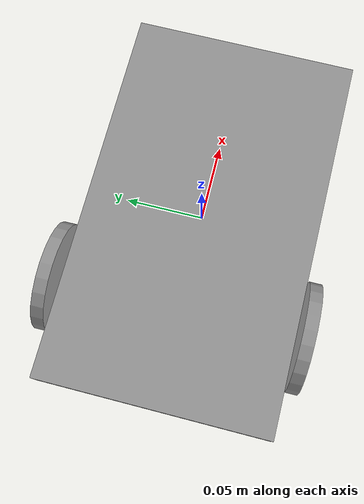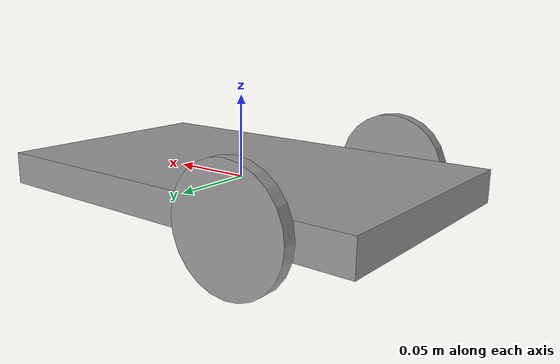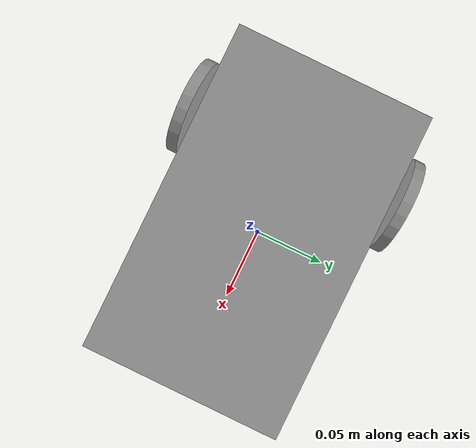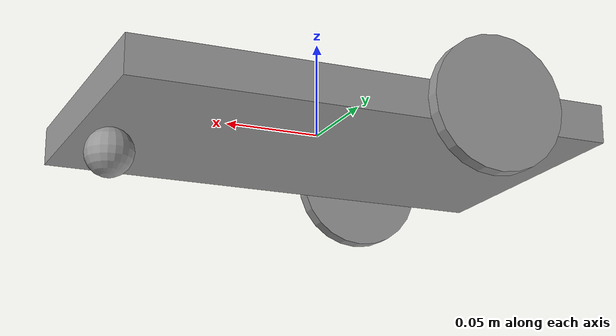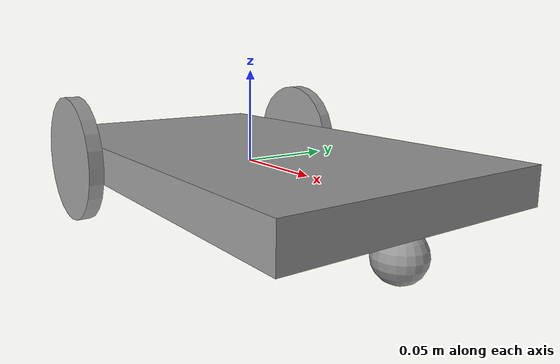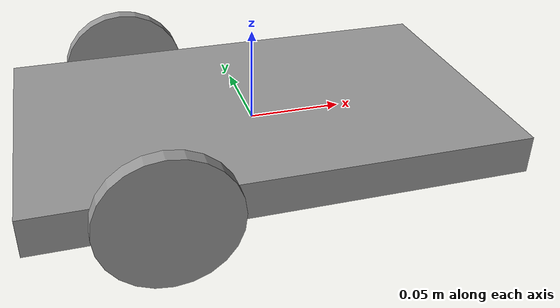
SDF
<?xml version='1.0'?>
<sdf version='1.6'>
  <model name='Differential_drive_robot'>
    <link name='base_link'>
      <pose frame=''>0 0 0 0 0 0</pose>        <!-- Pose of the  link relative to the world -->
      <inertial>                               <!-- As the name suggests, it define theinertial parameters of the links in the model -->
        <mass>1</mass>                         <!-- Mass of the link -->
        <inertia>                              <!-- Moment of Inertia Matrix -->
          <ixx>0.166667</ixx>
          <ixy>0</ixy>
          <ixz>0</ixz>
          <iyy>0.166667</iyy>
          <iyz>0</iyz>
          <izz>0.166667</izz>
        </inertia>
        <pose frame=''>0 0 0 0 -0 0</pose>
      </inertial>
      <gravity>1</gravity>                      <!-- Gravity ON -->
      <self_collide>0</self_collide>
      <kinematic>0</kinematic>                  <!-- If it is set as 1, the link won't be affeceted by system dynamics -->
      <visual name='visual'>                    <!-- As the name suggests, it define the visual appearance of the links in the model -->
        <pose frame=''>0 0 0 0 -0 0</pose>
        <geometry>
          <box>                                 <!-- Shape of the link. It can be one of the basic shapes provided in model-editor or you can also insert a STL/Mesh file of any custom design -->
            <size>0.25 0.15 0.02</size>         <!-- Dimensions of the link depending on the shape. A scaling factor can be defined for each axis in case of a custom design -->
          </box>
        </geometry>
        <material>
          <lighting>1</lighting>
          <script>
            <uri>file://media/materials/scripts/gazebo.material</uri>
            <name>Gazebo/Grey</name>
          </script>
          <ambient>0.3 0.3 0.3 1</ambient>
          <diffuse>0.7 0.7 0.7 1</diffuse>
          <specular>0.01 0.01 0.01 1</specular>
          <emissive>0 0 0 1</emissive>
          <shader type='vertex'>
            <normal_map>__default__</normal_map>
          </shader>
        </material>
        <cast_shadows>1</cast_shadows>
        <transparency>0</transparency>
      </visual>
      <collision name='collision'>                <!-- It defines the link parameters to be used by the physics engine for actual simulation. It defines the actual structure of the links -->
        <laser_retro>0</laser_retro>
        <max_contacts>10</max_contacts>
        <pose frame=''>0 0 0 0 -0 0</pose>
        <geometry>
          <box>
            <size>0.25 0.15 0.02</size>
          </box>
        </geometry>
        <surface>
          <friction>                              <!-- Defines the surface friction parameters -->
            <ode>
              <mu>1</mu>
              <mu2>1</mu2>
              <fdir1>0 0 0</fdir1>
              <slip1>0</slip1>
              <slip2>0</slip2>
            </ode>
            <torsional>
              <coefficient>1</coefficient>
              <patch_radius>0</patch_radius>
              <surface_radius>0</surface_radius>
              <use_patch_radius>1</use_patch_radius>
              <ode>
                <slip>0</slip>
              </ode>
            </torsional>
          </friction>
          <bounce>
            <restitution_coefficient>0</restitution_coefficient>
            <threshold>1e+06</threshold>
          </bounce>
          <contact>
            <collide_without_contact>0</collide_without_contact>
            <collide_without_contact_bitmask>1</collide_without_contact_bitmask>
            <collide_bitmask>1</collide_bitmask>
            <ode>
              <soft_cfm>0</soft_cfm>
              <soft_erp>0.2</soft_erp>
              <kp>1e+13</kp>
              <kd>1</kd>
              <max_vel>0.01</max_vel>
              <min_depth>0</min_depth>
            </ode>
            <bullet>
              <split_impulse>1</split_impulse>
              <split_impulse_penetration_threshold>-0.01</split_impulse_penetration_threshold>
              <soft_cfm>0</soft_cfm>
              <soft_erp>0.2</soft_erp>
              <kp>1e+13</kp>
              <kd>1</kd>
            </bullet>
          </contact>
        </surface>
      </collision>
    </link>

    <link name='right_wheel'>
      <pose frame=''>-0.06 -0.08 0 1.5714 -0 0</pose>
      <inertial>
        <mass>0.1</mass>
        <inertia>
          <ixx>0.145833</ixx>
          <ixy>0</ixy>
          <ixz>0</ixz>
          <iyy>0.145833</iyy>
          <iyz>0</iyz>
          <izz>0.125</izz>
        </inertia>
        <pose frame=''>0 0 0 0 -0 0</pose>
      </inertial>
      <gravity>1</gravity>
      <self_collide>0</self_collide>
      <kinematic>0</kinematic>
      <visual name='visual'>
        <pose frame=''>0 0 0 0 -0 0</pose>
        <geometry>
          <cylinder>
            <radius>0.035</radius>
            <length>0.008</length>
          </cylinder>
        </geometry>
        <material>
          <lighting>1</lighting>
          <script>
            <uri>file://media/materials/scripts/gazebo.material</uri>
            <name>Gazebo/Grey</name>
          </script>
          <ambient>0.3 0.3 0.3 1</ambient>
          <diffuse>0.7 0.7 0.7 1</diffuse>
          <specular>0.01 0.01 0.01 1</specular>
          <emissive>0 0 0 1</emissive>
          <shader type='vertex'>
            <normal_map>__default__</normal_map>
          </shader>
        </material>
        <cast_shadows>1</cast_shadows>
        <transparency>0</transparency>
      </visual>
      <collision name='collision'>
        <laser_retro>0</laser_retro>
        <max_contacts>10</max_contacts>
        <pose frame=''>0 0 0 0 -0 0</pose>
        <geometry>
          <cylinder>
            <radius>0.035</radius>
            <length>0.008</length>
          </cylinder>
        </geometry>
        <surface>
          <friction>
            <ode>
              <mu>1</mu>
              <mu2>1</mu2>
              <fdir1>0 0 0</fdir1>
              <slip1>0</slip1>
              <slip2>0</slip2>
            </ode>
            <torsional>
              <coefficient>1</coefficient>
              <patch_radius>0</patch_radius>
              <surface_radius>0</surface_radius>
              <use_patch_radius>1</use_patch_radius>
              <ode>
                <slip>0</slip>
              </ode>
            </torsional>
          </friction>
          <bounce>
            <restitution_coefficient>0</restitution_coefficient>
            <threshold>1e+06</threshold>
          </bounce>
          <contact>
            <collide_without_contact>0</collide_without_contact>
            <collide_without_contact_bitmask>1</collide_without_contact_bitmask>
            <collide_bitmask>1</collide_bitmask>
            <ode>
              <soft_cfm>0</soft_cfm>
              <soft_erp>0.2</soft_erp>
              <kp>1e+13</kp>
              <kd>1</kd>
              <max_vel>0.01</max_vel>
              <min_depth>0</min_depth>
            </ode>
            <bullet>
              <split_impulse>1</split_impulse>
              <split_impulse_penetration_threshold>-0.01</split_impulse_penetration_threshold>
              <soft_cfm>0</soft_cfm>
              <soft_erp>0.2</soft_erp>
              <kp>1e+13</kp>
              <kd>1</kd>
            </bullet>
          </contact>
        </surface>
      </collision>
    </link>

    <link name='left_wheel'>
      <pose frame=''>-0.06 0.08 0 1.5714 -0 0</pose>
      <inertial>
        <mass>0.1</mass>
        <inertia>
          <ixx>0.145833</ixx>
          <ixy>0</ixy>
          <ixz>0</ixz>
          <iyy>0.145833</iyy>
          <iyz>0</iyz>
          <izz>0.125</izz>
        </inertia>
        <pose frame=''>0 0 0 0 -0 0</pose>
      </inertial>
      <self_collide>0</self_collide>
      <kinematic>0</kinematic>
      <gravity>1</gravity>
      <visual name='visual'>
        <pose frame=''>0 0 0 0 -0 0</pose>
        <geometry>
          <cylinder>
            <radius>0.035</radius>
            <length>0.008</length>
          </cylinder>
        </geometry>
        <material>
          <lighting>1</lighting>
          <script>
            <uri>file://media/materials/scripts/gazebo.material</uri>
            <name>Gazebo/Grey</name>
          </script>
          <ambient>0.3 0.3 0.3 1</ambient>
          <diffuse>0.7 0.7 0.7 1</diffuse>
          <specular>0.01 0.01 0.01 1</specular>
          <emissive>0 0 0 1</emissive>
          <shader type='vertex'>
            <normal_map>__default__</normal_map>
          </shader>
        </material>
        <cast_shadows>1</cast_shadows>
        <transparency>0</transparency>
      </visual>
      <collision name='collision'>
        <laser_retro>0</laser_retro>
        <max_contacts>10</max_contacts>
        <pose frame=''>0 0 0 0 -0 0</pose>
        <geometry>
          <cylinder>
            <radius>0.035</radius>
            <length>0.008</length>
          </cylinder>
        </geometry>
        <surface>
          <friction>
            <ode>
              <mu>1</mu>
              <mu2>1</mu2>
              <fdir1>0 0 0</fdir1>
              <slip1>0</slip1>
              <slip2>0</slip2>
            </ode>
            <torsional>
              <coefficient>1</coefficient>
              <patch_radius>0</patch_radius>
              <surface_radius>0</surface_radius>
              <use_patch_radius>1</use_patch_radius>
              <ode>
                <slip>0</slip>
              </ode>
            </torsional>
          </friction>
          <bounce>
            <restitution_coefficient>0</restitution_coefficient>
            <threshold>1e+06</threshold>
          </bounce>
          <contact>
            <collide_without_contact>0</collide_without_contact>
            <collide_without_contact_bitmask>1</collide_without_contact_bitmask>
            <collide_bitmask>1</collide_bitmask>
            <ode>
              <soft_cfm>0</soft_cfm>
              <soft_erp>0.2</soft_erp>
              <kp>1e+13</kp>
              <kd>1</kd>
              <max_vel>0.01</max_vel>
              <min_depth>0</min_depth>
            </ode>
            <bullet>
              <split_impulse>1</split_impulse>
              <split_impulse_penetration_threshold>-0.01</split_impulse_penetration_threshold>
              <soft_cfm>0</soft_cfm>
              <soft_erp>0.2</soft_erp>
              <kp>1e+13</kp>
              <kd>1</kd>
            </bullet>
          </contact>
        </surface>
      </collision>
    </link>

    <link name='castor_wheel'>
      <pose frame=''>0.11 0 -0.0225 0 -0 0</pose>
      <inertial>
        <mass>0.05</mass>
        <inertia>
          <ixx>0.1</ixx>
          <ixy>0</ixy>
          <ixz>0</ixz>
          <iyy>0.1</iyy>
          <iyz>0</iyz>
          <izz>0.1</izz>
        </inertia>
        <pose frame=''>0 0 0 0 -0 0</pose>
      </inertial>
      <gravity>1</gravity>
      <self_collide>0</self_collide>
      <kinematic>0</kinematic>
      <visual name='visual'>
        <pose frame=''>0 0 0 0 -0 0</pose>
        <geometry>
          <sphere>
            <radius>0.0125</radius>
          </sphere>
        </geometry>
        <material>
          <lighting>1</lighting>
          <script>
            <uri>file://media/materials/scripts/gazebo.material</uri>
            <name>Gazebo/Grey</name>
          </script>
          <ambient>0.3 0.3 0.3 1</ambient>
          <diffuse>0.7 0.7 0.7 1</diffuse>
          <specular>0.01 0.01 0.01 1</specular>
          <emissive>0 0 0 1</emissive>
          <shader type='vertex'>
            <normal_map>__default__</normal_map>
          </shader>
        </material>
        <cast_shadows>1</cast_shadows>
        <transparency>0</transparency>
      </visual>
      <collision name='collision'>
        <laser_retro>0</laser_retro>
        <max_contacts>10</max_contacts>
        <pose frame=''>0 0 0 0 -0 0</pose>
        <geometry>
          <sphere>
            <radius>0.0125</radius>
          </sphere>
        </geometry>
        <surface>
          <friction>
            <ode>
              <mu>1</mu>
              <mu2>1</mu2>
              <fdir1>0 0 0</fdir1>
              <slip1>0</slip1>
              <slip2>0</slip2>
            </ode>
            <torsional>
              <coefficient>1</coefficient>
              <patch_radius>0</patch_radius>
              <surface_radius>0</surface_radius>
              <use_patch_radius>1</use_patch_radius>
              <ode>
                <slip>0</slip>
              </ode>
            </torsional>
          </friction>
          <bounce>
            <restitution_coefficient>0</restitution_coefficient>
            <threshold>1e+06</threshold>
          </bounce>
          <contact>
            <collide_without_contact>0</collide_without_contact>
            <collide_without_contact_bitmask>1</collide_without_contact_bitmask>
            <collide_bitmask>1</collide_bitmask>
            <ode>
              <soft_cfm>0</soft_cfm>
              <soft_erp>0.2</soft_erp>
              <kp>1e+13</kp>
              <kd>1</kd>
              <max_vel>0.01</max_vel>
              <min_depth>0</min_depth>
            </ode>
            <bullet>
              <split_impulse>1</split_impulse>
              <split_impulse_penetration_threshold>-0.01</split_impulse_penetration_threshold>
              <soft_cfm>0</soft_cfm>
              <soft_erp>0.2</soft_erp>
              <kp>1e+13</kp>
              <kd>1</kd>
            </bullet>
          </contact>
        </surface>
      </collision>
    </link>

    <joint name='right_wheel' type='revolute'>    <!-- Create a joint of one of the predefined types in Gazebo -->
      <parent>base_link</parent>                  <!-- Parent link/frame of the joint -->
      <child>right_wheel</child>                  <!-- Child link/frame of the joint -->
      <pose frame=''>0 0 0 0 -0 0</pose>          <!-- Define the pose of the joint relative to the parent frame-->
      <axis>
        <xyz>0 0 1</xyz>                          <!-- Define the axis of the joint -->
        <use_parent_model_frame>0</use_parent_model_frame>
        <limit>                                   <!-- Specifies the various physical limits of the joint -->
          <lower>-1.79769e+308</lower>
          <upper>1.79769e+308</upper>
          <effort>-1</effort>
          <velocity>-1</velocity>
        </limit>
        <dynamics>
          <spring_reference>0</spring_reference>
          <spring_stiffness>0</spring_stiffness>
          <damping>0</damping>
          <friction>0</friction>
        </dynamics>
      </axis>
      <physics>
        <ode>
          <limit>
            <cfm>0</cfm>
            <erp>0.2</erp>
          </limit>
          <suspension>
            <cfm>0</cfm>
            <erp>0.2</erp>
          </suspension>
        </ode>
      </physics>
    </joint>

    <joint name='left_wheel' type='revolute'>
      <parent>base_link</parent>
      <child>left_wheel</child>
      <pose frame=''>0 0 0 0 -0 0</pose>
      <axis>
        <xyz>0 0 1</xyz>
        <use_parent_model_frame>0</use_parent_model_frame>
        <limit>
          <lower>-1.79769e+308</lower>
          <upper>1.79769e+308</upper>
          <effort>-1</effort>
          <velocity>-1</velocity>
        </limit>
        <dynamics>
          <spring_reference>0</spring_reference>
          <spring_stiffness>0</spring_stiffness>
          <damping>0</damping>
          <friction>0</friction>
        </dynamics>
      </axis>
      <physics>
        <ode>
          <limit>
            <cfm>0</cfm>
            <erp>0.2</erp>
          </limit>
          <suspension>
            <cfm>0</cfm>
            <erp>0.2</erp>
          </suspension>
        </ode>
      </physics>
    </joint>

    <joint name='castor_wheel' type='ball'>
      <parent>base_link</parent>
      <child>castor_wheel</child>
      <pose frame=''>0 0 0 0 -0 0</pose>
      <physics>
        <ode>
          <limit>
            <cfm>0</cfm>
            <erp>0.2</erp>
          </limit>
          <suspension>
            <cfm>0</cfm>
            <erp>0.2</erp>
          </suspension>
        </ode>
      </physics>
    </joint>
    <static>0</static>
    <allow_auto_disable>1</allow_auto_disable>
    <!-- Insert the path to the shared object (.so) file of the plugin to control the above defined model -->
    <plugin name="gazebo_ros_control" filename="libgazebo_ros_api_plugin.so"/>
    <plugin name="differential_drive_tutorial" filename="/home/saurabh/catkin_ws/devel/lib/libdifferential_drive_tutorial.so"/> <!-- change the path for your system -->
  </model>
</sdf>
